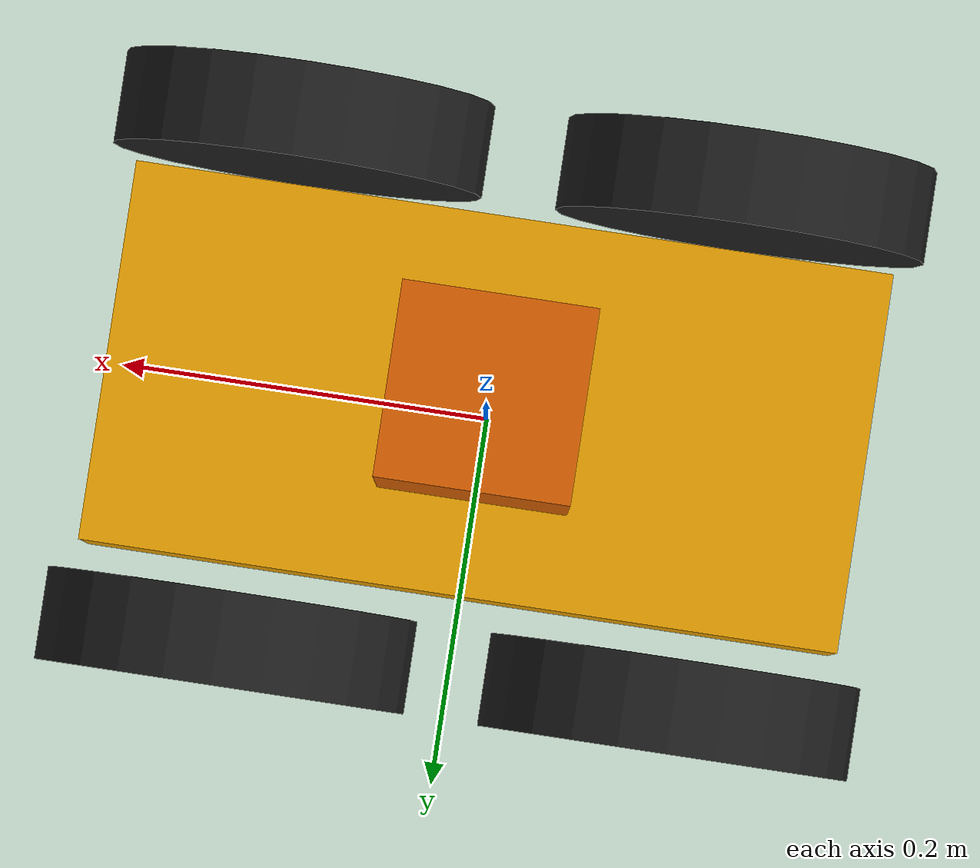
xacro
<?xml version="1.0" ?>
<robot name="differential_drive_model" xmlns:xacro="http://www.ros.org/wiki/xacro">

    <!-- include basics -->
    <xacro:include filename="$(find gazebo_simulations)/models/urdf/links.xacro" />
    <xacro:include filename="$(find gazebo_simulations)/models/urdf/joints.xacro" />
    <xacro:include filename="$(find gazebo_simulations)/models/urdf/materials.xacro" />
    <xacro:include filename="$(find gazebo_simulations)/models/urdf/const.xacro" />
    <xacro:include filename="$(find gazebo_simulations)/models/urdf/diff_model/wheel.xacro" />

    <link_box name="base_link" origin_xyz="0 0 0.1" origin_rpy="0 0 0" mass="1" length=".4" width=".2" height=".1" />
    <gazebo reference="base_link">
        <turnGravityOff>false</turnGravityOff>
    </gazebo>

    <wheel name="front_left_wheel" origin_xyz="0 0 0" mass="0.4" radius="0.1" length="0.05" base_link="base_link" joint_xyz="0.12 0.14 0.05"  />
    <wheel name="back_left_wheel" origin_xyz="0 0 0 " mass="0.4" radius="0.1" length="0.05" base_link="base_link" joint_xyz="-0.12 0.14 0.05" />
    <wheel name="back_right_wheel" origin_xyz="0 0 0" mass="0.4" radius="0.1" length="0.05" base_link="base_link" joint_xyz="-0.12 -0.14 0.05"/>
    <wheel name="front_right_wheel" origin_xyz="0 0 0" mass="0.4" radius="0.1" length="0.05" base_link="base_link" joint_xyz="0.12 -0.14 0.05"/>

    <link_box name="kinect_link" origin_xyz="0 0 0" origin_rpy="0 1.57 0" mass="0.5" length="0.2" width=".1" height=".1"/>
    <limits_joint name="base_link_kinect" type="fixed" axis_xyz="0 0 1" origin_rpy="0 0 0" origin_xyz="0 0 0.2" parent_link="base_link" child_link="kinect_link" limit_e="100" limit_l="100" limit_u="10000000" limit_v="10000000" />

    <gazebo>
        <plugin name="gazebo_ros_control" filename="libgazebo_ros_control.so">
            <robotNamespace>differential_drive_model</robotNamespace>
        </plugin>
    </gazebo>

    <gazebo reference="camera_depth_frame">
        <sensor name="camera1" type="depth">
          <always_on>true</always_on>
          <update_rate>20.0</update_rate>
          <camera>
            <horizontal_fov>1.0471975512</horizontal_fov>
            <image>
              <format>R8G8B8</format>
              <width>640</width>
              <height>480</height>
            </image>
            <clip>
              <near>0.05</near>
              <far>8.0</far>
            </clip>
          </camera>
          <plugin filename="libgazebo_ros_openni_kinect.so" name="camera_depth_frame_kinect_controller">
            <baseline>0.1</baseline>
            <alwaysOn>true</alwaysOn>
            <updateRate>10</updateRate>
            <cameraName>camera1</cameraName>
            <imageTopicName>depth/image_raw</imageTopicName>
            <cameraInfoTopicName>depth/camera_info</cameraInfoTopicName>
            <depthImageTopicName>depth/image_raw</depthImageTopicName>
            <depthImageCameraInfoTopicName>depth/camera_info</depthImageCameraInfoTopicName>
            <pointCloudTopicName>depth/points</pointCloudTopicName>
            <frameName>camera_depth_optical_frame</frameName>
            <pointCloudCutoff>0.3</pointCloudCutoff>
            <distortion_k1>0.0</distortion_k1>
            <distortion_k2>0.0</distortion_k2>
            <distortion_k3>0.0</distortion_k3>
            <distortion_t1>0.0</distortion_t1>
            <distortion_t2>0.0</distortion_t2>
          </plugin>
        </sensor>
      </gazebo>

    <gazebo reference="kinect_link">
        <sensor type="depth" name="intel_realsense">
            <always_on>true</always_on>
            <visualize>true</visualize>
            <camera>
                <horizontal_fov>1.0471975512</horizontal_fov>
                <image>
                    <width>640</width>
                    <height>480</height>
                    <format>R8G8B8</format>
                </image>
                <depth_camera></depth_camera>
                <clip>
                    <near>0.1</near>
                    <far>20</far>
                </clip>
            </camera>
            <plugin name="camera_controller" filename="libgazebo_ros_openni_kinect.so">
                <baseline>0.2</baseline>
                <alwaysOn>true</alwaysOn>
                <updateRate>20.0</updateRate>
                <cameraName>intel_realsense</cameraName>
                <frameName>kinect_link</frameName>
                <imageTopicName>intel_realsense/rgb/image_raw</imageTopicName>
                <depthImageTopicName>intel_realsense/depth/image_raw</depthImageTopicName>
                <pointCloudTopicName>intel_realsense/depth/points</pointCloudTopicName>
                <cameraInfoTopicName>intel_realsense/rgb/camera_info</cameraInfoTopicName>
                <depthImageCameraInfoTopicName>intel_realsense/depth/camera_info</depthImageCameraInfoTopicName>
                <pointCloudCutoff>0.4</pointCloudCutoff>
                <hackBaseline>0.07</hackBaseline>
                <distortionK1>0.0</distortionK1>
                <publishOdomTF>false</publishOdomTF>
                <distortionK2>0.0</distortionK2>
                <distortionK3>0.0</distortionK3>
                <distortionT1>0.0</distortionT1>
                <distortionT2>0.0</distortionT2>
            </plugin>
        </sensor>
    </gazebo>

</robot>

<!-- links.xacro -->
<robot xmlns:xacro="http://www.ros.org/wiki/xacro">

    <xacro:macro name="cylinder_inertia" params="origin_xyz origin_rpy mass radius length">
        <inertial>
            <mass value="${mass}" />
            <origin rpy="${origin_rpy}" xyz="${origin_xyz}" />
            <inertia ixx="${mass*(3*radius*radius+length*length)/12}" ixy="0.0" ixz="0.0" iyy="${mass*(3*radius*radius+length*length)/12}" iyz="0.0" izz="${mass*radius*radius/2}" />
        </inertial>
    </xacro:macro>

    <xacro:macro name="box_inertia" params="origin_xyz origin_rpy mass length width height">
        <inertial>
            <mass value="${mass}" />
            <origin rpy="${origin_rpy}" xyz="${origin_xyz}" />
            <inertia ixx="${mass*(width*width+height*height)/12}" ixy="0" ixz="0" iyy="${mass*(length*length+height*height)/12}" iyz="0" izz="${mass*(length*length+height*height)/12}" />
        </inertial>
    </xacro:macro>

    <xacro:macro name="dummy_link">
        <link name="dummy_link"></link>
    </xacro:macro>

    <xacro:macro name="link_cylinder" params="name origin_xyz origin_rpy mass radius length ">
        <link name="${name}">
            <cylinder_inertia origin_xyz="${origin_xyz}" origin_rpy="${origin_rpy}" mass="${mass}" radius="${radius}" length="${length}"/>
            <collision>
                <origin rpy="${origin_rpy}" xyz="${origin_xyz}" />
                <geometry>
                    <cylinder radius="${radius}" length="${length}" />
                </geometry>
            </collision>
            <visual>
                <origin rpy="${origin_rpy}" xyz="${origin_xyz}" />
                <geometry>
                    <cylinder radius="${radius}" length="${length}" />
                </geometry>
            </visual>
        </link>
    </xacro:macro>

    <xacro:macro name="link_cylinder_mesh" params="name origin_xyz origin_rpy mass radius length mesh_path mesh_scale">
        <link name="${name}">
            <cylinder_inertia origin_xyz="${origin_xyz}" origin_rpy="${origin_rpy}" mass="${mass}" radius="${radius}" length="${length}"/>
            <collision>
                <origin rpy="${origin_rpy}" xyz="${origin_xyz}" />
                <geometry>
                    <cylinder radius="${radius}" length="${length}" />
                </geometry>
            </collision>
            <visual>
                <origin rpy="${origin_rpy}" xyz="${origin_xyz}" />
                <geometry>
                    <mesh filename="${mesh_path}" scale="${mesh_scale}"/>
                </geometry>
            </visual>
        </link>
    </xacro:macro>

    <xacro:macro name="link_box" params="name origin_xyz origin_rpy mass length width height">
        <link name="${name}">
            <box_inertia origin_xyz="${origin_xyz}" origin_rpy="${origin_rpy}" mass="${mass}" length="${length}" width="${width}" height="${height}" />
            <collision>
                <origin rpy="${origin_rpy}" xyz="${origin_xyz}" />
                <geometry>
                    <box size="${length} ${width} ${height}" />
                </geometry>
            </collision>
            <visual>
                <origin rpy="${origin_rpy}" xyz="${origin_xyz}" />
                <geometry>
                    <box size="${length} ${width} ${height}" />
                </geometry>
            </visual>
        </link>
    </xacro:macro>

    <xacro:macro name="link_box_mesh" params="name origin_xyz origin_rpy mass length width height mesh_path scale">
        <link name="${name}">
            <box_inertia origin_xyz="${origin_xyz}" origin_rpy="${origin_rpy}" mass="${mass}" length="${length}" width="${width}" height="${height}" />
            <collision>
                <origin rpy="${origin_rpy}" xyz="${origin_xyz}" />
                <geometry>
                    <box size="${length} ${width} ${height}" />
                </geometry>
            </collision>
            <visual>
                <origin rpy="${origin_rpy}" xyz="${origin_xyz}" />
                <geometry>
                    <mesh filename="${mesh_path}" scale="${mesh_scale}"/>
                </geometry>
            </visual>
        </link>
    </xacro:macro>

</robot>

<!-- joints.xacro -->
<robot xmlns:xacro="http://www.ros.org/wiki/xacro">

    <xacro:macro name="basic_joint" params="name type axis_xyz parent_link child_link">
        <joint name="${name}" type="${type}">
            <axis xyz="${axis_xyz}" />
            <parent link="${parent_link}" />
            <child link="${child_link}" />
        </joint>
    </xacro:macro>

    <xacro:macro name="limits_joint" params="name type axis_xyz origin_rpy origin_xyz parent_link child_link limit_e limit_l limit_u limit_v">
        <joint name="${name}" type="${type}">
            <axis xyz="${axis_xyz}" />
            <limit effort="${limit_e}" lower="${limit_l}" upper="${limit_u}" velocity="${limit_v}" />
            <origin rpy="${origin_rpy}" xyz="${origin_xyz}" />
            <parent link="${parent_link}" />
            <child link="${child_link}" />
        </joint>

    </xacro:macro>

</robot>

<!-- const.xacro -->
<robot xmlns:xacro="http://www.ros.org/wiki/xacro">
    <xacro:property name="PI" value="3.1415"/>
</robot>
